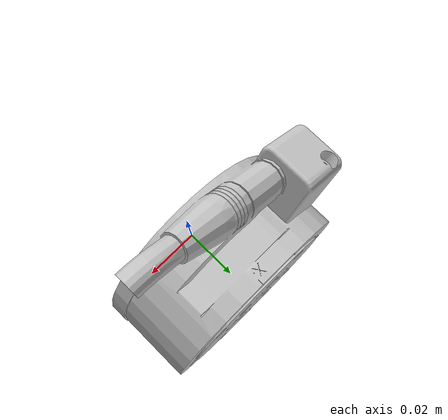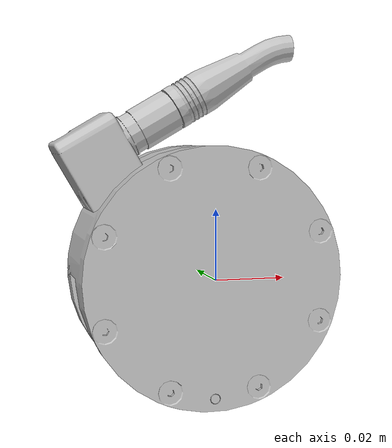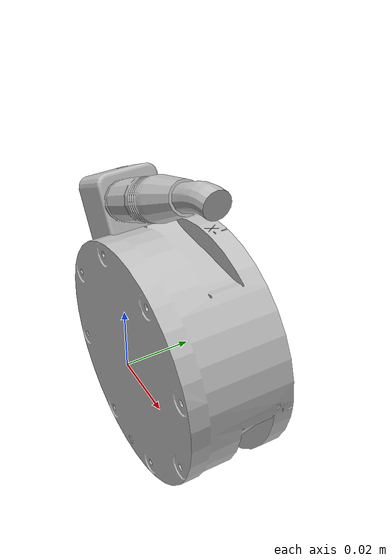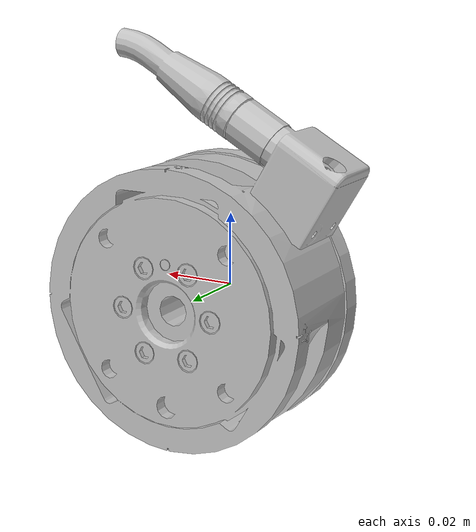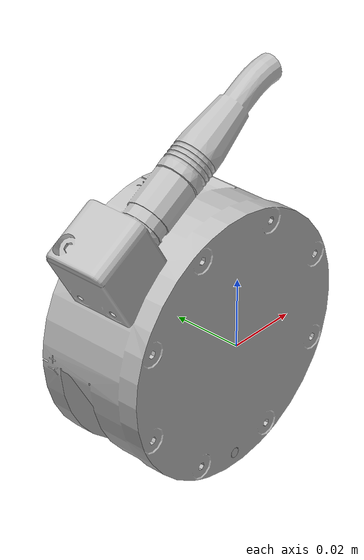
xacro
<?xml version="1.0" encoding="utf-8"?>
<robot
  name="ft_sensor"
  xmlns:xacro="http://www.ros.org/wiki/xacro">
  <link
    name="link_ft_sensor">
    <inertial>
      <origin
        xyz="-0.00152921654106877 0.00302047148579856 -0.0158969383860535"
        rpy="0 0 0" />
      <mass
        value="0.00405727824464069" />
      <inertia
        ixx="2.11438887462202E-06"
        ixy="1.86490444186628E-07"
        ixz="4.91600397505994E-09"
        iyy="1.82605884169168E-06"
        iyz="-2.43792170617711E-08"
        izz="3.23118515297441E-06" />
    </inertial>
    <visual>
      <origin
        xyz="0 0 0"
        rpy="0 0 0" />
      <geometry>
        <mesh
          filename="package://system_urdf/meshes/roller_probe_pieces/ft_sensor.STL" />
      </geometry>
      <material
        name="">
        <color
          rgba="0.752941176470588 0.752941176470588 0.752941176470588 1" />
      </material>
    </visual>
    <collision>
      <origin
        xyz="0 0 0"
        rpy="0 0 0" />
      <geometry>
        <mesh
          filename="package://system_urdf/meshes/roller_probe_pieces/ft_sensor.STL" />
      </geometry>
    </collision>
  </link>
</robot>
